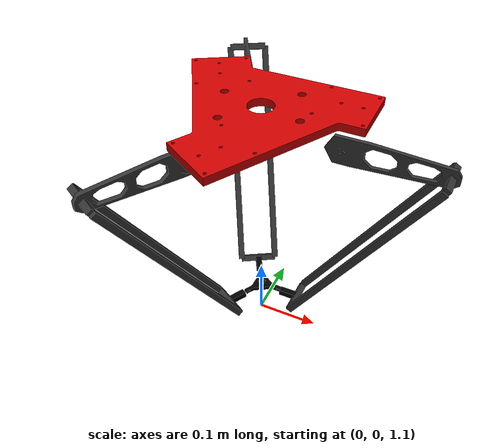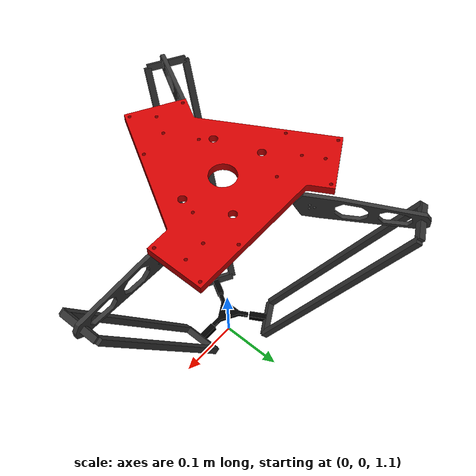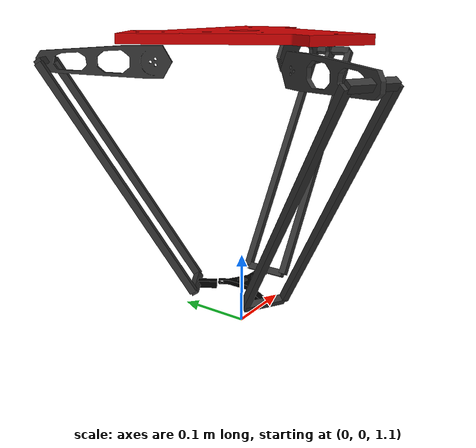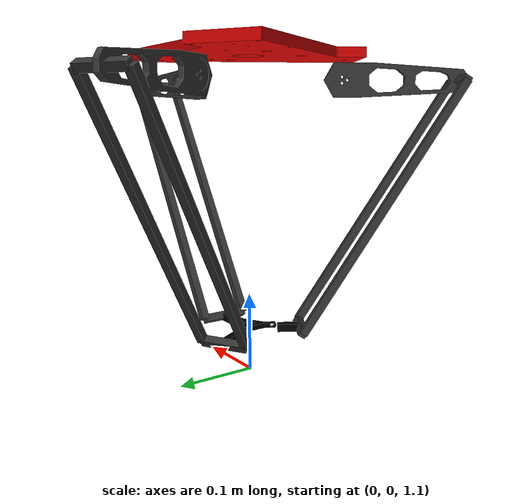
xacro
<?xml version="1.0"?>
<!-- Revolute-Revolute Manipulator -->
<robot name="delta" xmlns:xacro="http://www.ros.org/wiki/xacro">

  <!-- Constants for robot dimensions -->
  <xacro:property name="inch" value="0.0254"/>
  <xacro:property name="PI" value="3.1415926535897931"/>
  <xacro:property name="width" value="0.05" /> <!-- Square dimensions (widthxwidth) of beams -->
  <xacro:property name="base_radius" value="0.111" />
  <xacro:property name="base_length" value="${inch/2}"/>
  <xacro:property name="platform_radius" value="0.0345" />
  <xacro:property name="platform_length" value="${inch/4}"/>
  <xacro:property name="platform_lower_link_dist" value="${platform_radius+0.03}"/>

  <xacro:include filename="macros.xacro" />
  <xacro:include filename="gazebo_stuff.xacro" />

  <!-- Used for fixing robot to Gazebo 'base_link' -->
  <link name="world"/>

  <joint name="fixed" type="fixed">
    <parent link="world"/>
    <child link="base_link"/>
    <origin xyz="0 0 1.5" rpy="0 0 0"/>
  </joint>

  <link name="base_link">
    <collision>
      <origin xyz="0 0 0" rpy="0 0 ${30*PI/180}"/>
      <geometry>
        <cylinder radius="${base_radius}" length="${base_length}"/>
      </geometry>
    </collision>
    <visual>
      <origin xyz="0 0 0" rpy="0 0 ${30*PI/180}"/>
      <geometry>
        <mesh filename="file://$(find my_second_delta)/meshes/Base_Fija.stl" scale="0.001 0.001 0.001"/>
      </geometry>
      <material name="red">

      </material>
    </visual>
    <xacro:inertial_cylinder mass="1.616" length="${base_length}" radius="${base_radius}">
      <origin xyz="0 0 0" rpy="0 0 0"/>
    </xacro:inertial_cylinder>
  </link>

  <xacro:delta_arm prefix="front_"/>

  <joint name="front_delta_arm_joint" type="revolute">
    <parent link="base_link"/>
    <child link="front_upper_link"/>
    <origin xyz="0.12 0 -0.0285" rpy="0 0 0"/>
    <axis xyz="0 1 0"/>
    <dynamics damping="0.7"/>
    <limit lower="${-20*PI/180}" upper="${90*PI/180}" effort="6" velocity="8"/>
  </joint>

  <xacro:delta_arm prefix="right_"/>

  <joint name="right_delta_arm_joint" type="revolute">
    <parent link="base_link"/>
    <child link="right_upper_link"/>
    <origin xyz="-0.06 -0.1039 -0.0285" rpy="0 0 ${-120*PI/180}"/>
    <axis xyz="0 1 0"/>
    <dynamics damping="0.7"/>
    <limit lower="${-20*PI/180}" upper="${90*PI/180}" effort="6" velocity="8"/>
  </joint>

  <xacro:delta_arm prefix="left_"/>

  <joint name="left_delta_arm_joint" type="revolute">
    <parent link="base_link"/>
    <child link="left_upper_link"/>
    <origin xyz="-0.06 0.1039 -0.0285" rpy="0 0 ${120*PI/180}"/>
    <axis xyz="0 1 0"/>
    <dynamics damping="0.7"/>
    <limit lower="${-20*PI/180}" upper="${90*PI/180}" effort="6" velocity="8"/>
  </joint>

  <link name="end_link">
    <collision>
      <origin xyz="0 0 0" rpy="0 0 ${-30*PI/180}"/>
      <geometry>
	      <cylinder length="${platform_length}" radius="${platform_radius}"/>
      </geometry>
    </collision>
    <visual>
      <origin xyz="0 0 0" rpy="0 0 ${-30*PI/180}"/>
      <geometry>
        <mesh filename="file://$(find my_second_delta)/meshes/Base_Movil.stl" scale="0.001 0.001 0.001"/>
      </geometry>
      <material name="black">
      </material>
    </visual>
    <xacro:inertial_cylinder mass="${mass}" length="${platform_length}" radius="${platform_radius}">
      <origin xyz="0 0 0" rpy="0 0 ${-30*PI/180}"/>
    </xacro:inertial_cylinder>
  </link>

  <joint name="front_end_joint" type="fixed">
    <parent link="front_lower_end_link"/>
    <child link="end_link"/>
    <origin xyz="-0.0645 0 0" rpy="0 0 0"/>
  </joint>

  <link name="right_end_virtual_link">
    <inertial>
      <origin xyz="0 0 0" rpy="0 0 0"/>
      <mass value="0.001"/>
      <inertia
        ixx="0.0001" ixy="0.0" ixz="0.0"
        iyy="0.0001" iyz="0.0"
        izz="0.0001"/>
    </inertial>
  </link>

  <joint name="right_end_virtual_joint" type="fixed">
    <parent link="end_link"/>
    <child link="right_end_virtual_link"/>
    <origin xyz="-0.017 -0.02785 0" rpy="0 0 ${-120*PI/180}"/>
  </joint>

  <link name="left_end_virtual_link">
    <inertial>
      <origin xyz="0 0 0" rpy="0 0 0"/>
      <mass value="0.001"/>
      <inertia
        ixx="0.0001" ixy="0.0" ixz="0.0"
        iyy="0.0001" iyz="0.0"
        izz="0.0001"/>
    </inertial>
  </link>

  <joint name="left_end_virtual_joint" type="fixed">
    <parent link="end_link"/>
    <child link="left_end_virtual_link"/>
    <origin xyz="-0.017 0.02785 0" rpy="0 0 ${120*PI/180}"/>
  </joint>

  <gazebo>
    <joint name="right_end_joint" type="fixed">
      <parent>right_lower_end_link</parent>
      <child>right_end_virtual_link</child>
      <pose> 0 0 0 0 0 0 </pose>
    </joint>
    <joint name="left_end_joint" type="fixed">
      <parent>left_lower_end_link</parent>
      <child>left_end_virtual_link</child>
      <pose> 0 0 0 0 0 0 </pose>
    </joint>
  </gazebo>
</robot>

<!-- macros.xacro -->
<robot xmlns:xacro="http://www.ros.org/wiki/xacro">

  <xacro:macro name="inertial_sphere" params="mass radius *origin">
      <inertial>
          <xacro:insert_block name="origin"/>
          <mass value="${mass}"/>
          <inertia ixx="${(2/5) * mass * (radius * radius)}" ixy="0.0" ixz="0.0"
                  iyy="${(2/5) * mass * (radius * radius)}" iyz="0.0"
                  izz="${(2/5) * mass * (radius * radius)}"/>
      </inertial>
  </xacro:macro>

  <xacro:macro name="inertial_box" params="mass x y z *origin">
      <inertial>
          <xacro:insert_block name="origin"/>
          <mass value="${mass}"/>
          <inertia ixx="${(1/12) * mass * (y*y + z*z)}" ixy="0.0" ixz="0.0"
                  iyy="${(1/12) * mass * (x*x + z*z)}" iyz="0.0"
                  izz="${(1/12) * mass * (y*y + x*x)}"/>
      </inertial>
  </xacro:macro>

  <xacro:macro name="inertial_cylinder" params="mass length radius *origin">
      <inertial>
          <xacro:insert_block name="origin"/>
          <mass value="${mass}"/>
          <inertia ixx="${(1/12) * mass * (3*radius*radius + length*length)}" ixy="0.0" ixz="0.0"
                  iyy="${(1/12) * mass * (3*radius*radius + length*length)}" iyz="0.0"
                  izz="${(1/2) * mass * (radius*radius)}"/>
      </inertial>
  </xacro:macro>

    <!-- Constants for robot dimensions -->
  <xacro:property name="PI" value="3.1415926535897931"/>
  <xacro:property name="inch" value="0.0254"/>
  <!-- Important angle when robot at origin point, must be calculated!!!!!! -->
  <xacro:property name="elbow_angle" value="${32.5*PI/180}" />
  <xacro:property name="wrist_angle" value="-${elbow_angle}" />
  <xacro:property name="mass" value="0.02" /> <!-- arbitrary value for mass -->
  <xacro:property name="upper_width" value="${inch/4}" /> <!-- Square dimensions (widthxwidth) of beams -->
  <xacro:property name="upper_height" value="0.043"/>
  <xacro:property name="lower_width" value="0.01" />
  <xacro:property name="upper_length" value="0.1475" /> <!-- base and end links -->
  <xacro:property name="lower_height1" value="0.06" /> <!-- Upper link -->
  <xacro:property name="lower_height2" value="0.375" /> <!-- lower link -->
  <xacro:property name="lower_height3" value="0.03" /> <!-- Upper link -->

  <xacro:macro name="delta_arm" params="prefix">
    <link name="${prefix}upper_link">
      <collision>
        <origin xyz="0 0 0" rpy="${180*PI/180} 0 0"/>
        <geometry>
          <box size="${upper_length} ${upper_width} ${upper_height}"/>
        </geometry>
      </collision>
      <visual>
        <origin xyz="0 0 0" rpy="${180*PI/180} 0 0"/>
        <geometry>
          <mesh filename="file://$(find my_second_delta)/meshes/Brazo.stl" scale="0.001 0.001 0.001"/>
        </geometry>
        <material name="grey">

        </material>
      </visual>
      <xacro:inertial_box mass="${mass}" x="${upper_length}" y="${upper_width}" z="${upper_height}">
        <origin xyz="0 0 0" rpy="${180*PI/180} 0 0"/>
      </xacro:inertial_box>
    </link>

    <joint name="${prefix}upper_joint" type="continuous">
      <parent link="${prefix}upper_link"/>
      <child link="${prefix}lower_top_link"/>
      <origin xyz="${upper_length} 0 0" rpy="0 ${elbow_angle} 0"/>
      <axis xyz="0 1 0"/>
    </joint>

    <link name="${prefix}lower_top_link">
      <collision>
        <origin xyz="0 0 0" rpy="0 0 0"/>
        <geometry>
          <box size="${lower_width} ${lower_height1} ${lower_width}"/>
        </geometry>
      </collision>
      <visual>
        <origin xyz="0 0 0" rpy="0 0 0"/>
        <geometry>
          <box size="${lower_width} ${lower_height1} ${lower_width}"/>
        </geometry>
        <material name="grey">
          <color rgba="0.2 0.2 0.2 1.0"/>
        </material>
      </visual>
      <inertial>
        <origin xyz="0 0 0" rpy="0 0 0"/>
        <mass value="${mass}"/>
        <inertia
          ixx="${mass / 12.0 * (lower_width*lower_width + lower_height1*lower_height1)}" ixy="0.0" ixz="0.0"
          iyy="${mass / 12.0 * (lower_width*lower_width + lower_width*lower_width)}" iyz="0.0"
          izz="${mass / 12.0 * (lower_width*lower_width + lower_height1*lower_height1)}"/>
      </inertial>
    </link>

    <joint name="${prefix}lower_top_rignt_joint" type="continuous">
      <parent link="${prefix}lower_top_link"/>
      <child link="${prefix}lower_right_link"/>
      <origin xyz="0 ${-lower_height1/2} 0" rpy="0 0 0"/>
      <axis xyz="1 0 0"/>
    </joint>

    <link name="${prefix}lower_right_link">
      <collision>
        <origin xyz="0 0 ${-lower_height2/2}" rpy="0 0 0"/>
        <geometry>
          <box size="${lower_width} ${lower_width} ${lower_height2}"/>
        </geometry>
      </collision>
      <visual>
        <origin xyz="0 0 ${-lower_height2/2}" rpy="0 0 0"/>
        <geometry>
          <box size="${lower_width} ${lower_width} ${lower_height2}"/>
        </geometry>
        <material name="grey">
          <color rgba="0.2 0.2 0.2 1.0"/>
        </material>
      </visual>
      <inertial>
        <origin xyz="0 0 ${-lower_height2/2}" rpy="0 0 0"/>
        <mass value="${mass}"/>
        <inertia
          ixx="${mass / 12.0 * (lower_width*lower_width + lower_height2*lower_height2)}" ixy="0.0" ixz="0.0"
          iyy="${mass / 12.0 * (lower_height2*lower_height2 + lower_width*lower_width)}" iyz="0.0"
          izz="${mass / 12.0 * (lower_width*lower_width + lower_width*lower_width)}"/>
      </inertial>
    </link>

    <joint name="${prefix}lower_top_left_joint" type="continuous">
      <parent link="${prefix}lower_top_link"/>
      <child link="${prefix}lower_left_link"/>
      <origin xyz="0 ${lower_height1/2} 0" rpy="0 0 0"/>
      <axis xyz="1 0 0"/>
    </joint>

    <link name="${prefix}lower_left_link">
      <collision>
        <origin xyz="0 0 ${-lower_height2/2}" rpy="0 0 0"/>
        <geometry>
          <box size="${lower_width} ${lower_width} ${lower_height2}"/>
        </geometry>
      </collision>
      <visual>
        <origin xyz="0 0 ${-lower_height2/2}" rpy="0 0 0"/>
        <geometry>
          <box size="${lower_width} ${lower_width} ${lower_height2}"/>
        </geometry>
        <material name="grey">
          <color rgba="0.2 0.2 0.2 1.0"/>
        </material>
      </visual>
      <inertial>
        <origin xyz="0 0 ${-lower_height2/2}" rpy="0 0 0"/>
        <mass value="${mass}"/>
        <inertia
          ixx="${mass / 12.0 * (lower_width*lower_width + lower_height2*lower_height2)}" ixy="0.0" ixz="0.0"
          iyy="${mass / 12.0 * (lower_height2*lower_height2 + lower_width*lower_width)}" iyz="0.0"
          izz="${mass / 12.0 * (lower_width*lower_width + lower_width*lower_width)}"/>
      </inertial>
    </link>

    <joint name="${prefix}lower_right_bottom_joint" type="continuous">
      <parent link="${prefix}lower_right_link"/>
      <child link="${prefix}lower_bottom_link"/>
      <origin xyz="0 0 ${-lower_height2}" rpy="0 0 0"/>
      <axis xyz="1 0 0"/>
    </joint>

    <link name="${prefix}lower_bottom_link">
      <collision>
        <origin xyz="0 ${lower_height1/2} 0" rpy="0 0 0"/>
        <geometry>
          <box size="${lower_width} ${lower_height1} ${lower_width}"/>
        </geometry>
      </collision>
      <visual>
        <origin xyz="0 ${lower_height1/2} 0" rpy="0 0 0"/>
        <geometry>
          <box size="${lower_width} ${lower_height1} ${lower_width}"/>
        </geometry>
        <material name="grey">
          <color rgba="0.2 0.2 0.2 1.0"/>
        </material>
      </visual>
      <inertial>
        <origin xyz="0 ${lower_height1/2} 0" rpy="0 0 0"/>
        <mass value="${mass}"/>
        <inertia
          ixx="${mass / 12.0 * (lower_width*lower_width + lower_height1*lower_height1)}" ixy="0.0" ixz="0.0"
          iyy="${mass / 12.0 * (lower_height1*lower_height1 + lower_width*lower_width)}" iyz="0.0"
          izz="${mass / 12.0 * (lower_width*lower_width + lower_width*lower_width)}"/>
      </inertial>
    </link>

    <joint name="${prefix}lower_bottom_end_joint" type="continuous">
      <parent link="${prefix}lower_bottom_link"/>
      <child link="${prefix}lower_end_link"/>
      <origin xyz="0 ${lower_height1/2} 0" rpy="0 ${wrist_angle} 0"/>
      <axis xyz="0 1 0"/>
    </joint>

    <link name="${prefix}lower_end_link">
      <collision>
        <origin xyz="${-lower_height3/2} 0 0" rpy="0 0 0"/>
        <geometry>
          <box size="${lower_height3} ${lower_width} ${lower_width}"/>
        </geometry>
      </collision>
      <visual>
        <origin xyz="${-lower_height3/2} 0 0" rpy="0 0 0"/>
        <geometry>
          <box size="${lower_height3} ${lower_width} ${lower_width}"/>
        </geometry>
        <material name="black">
          <color rgba="0.0 0.0 0.0 1.0"/>
        </material>
      </visual>
      <inertial>
        <origin xyz="${-lower_height3/2} 0 0" rpy="0 0 0"/>
        <mass value="${mass}"/>
        <inertia
          ixx="${mass / 12.0 * (lower_width*lower_width + lower_width*lower_width)}" ixy="0.0" ixz="0.0"
          iyy="${mass / 12.0 * (lower_height3*lower_height3 + lower_width*lower_width)}" iyz="0.0"
          izz="${mass / 12.0 * (lower_height3*lower_height3 + lower_width*lower_width)}"/>
      </inertial>
    </link>

    <joint name="${prefix}lower_bottom_virtual_joint" type="continuous">
      <parent link="${prefix}lower_bottom_link"/>
      <child link="${prefix}lower_bottom_virtual_link"/>
      <origin xyz="0 ${lower_height1} 0" rpy="0 0 0"/>
      <axis xyz="1 0 0"/>
    </joint>

    <link name="${prefix}lower_bottom_virtual_link">
      <inertial>
        <origin xyz="0 0 0" rpy="0 0 0"/>
        <mass value="0.01"/>
        <inertia
          ixx="0.001" ixy="0.0" ixz="0.0"
          iyy="0.001" iyz="0.0"
          izz="0.001"/>
      </inertial>
    </link>

    <joint name="${prefix}lower_left_virtual_joint" type="fixed">
      <parent link="${prefix}lower_left_link"/>
      <child link="${prefix}lower_left_virtual_link"/>
      <origin xyz="0 0 ${-lower_height2}" rpy="0 0 0"/>
    </joint>

    <link name="${prefix}lower_left_virtual_link">
      <inertial>
        <origin xyz="0 0 0" rpy="0 0 0"/>
        <mass value="0.01"/>
        <inertia
          ixx="0.001" ixy="0.0" ixz="0.0"
          iyy="0.001" iyz="0.0"
          izz="0.001"/>
      </inertial>
    </link>

    <gazebo>
      <joint name="${prefix}lower_left_bottom_joint" type="fixed">
        <parent>${prefix}lower_left_virtual_link</parent>
        <child>${prefix}lower_bottom_virtual_link</child>
        <pose> 0 0 0 0 0 0 </pose>
      </joint>
    </gazebo>

  </xacro:macro>
</robot>

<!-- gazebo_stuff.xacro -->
<robot xmlns:xacro="http://www.ros.org/wiki/xacro">
    <physics type='ode'>
    <max_step_size>0.001</max_step_size>
    <real_time_factor>0.1</real_time_factor>
    <real_time_update_rate>1000</real_time_update_rate>
    <gravity>0 0 -9.8</gravity>
  </physics>

  <gazebo>
    <plugin name="gazebo_ros_control" filename="libgazebo_ros_control.so">
      <robotNamespace></robotNamespace>
      <robotSimType>gazebo_ros_control/DefaultRobotHWSim</robotSimType>
      <legacyModeNS>true</legacyModeNS>
    </plugin>
  </gazebo>

  <gazebo reference="base_link">
    <material>Gazebo/Orange</material>
    <selfCollide>false</selfCollide>
  </gazebo>

  <gazebo reference="end_link">
    <material>Gazebo/Black</material>
    <selfCollide>false</selfCollide>
  </gazebo>

  <transmission name="front_delta_arm_joint_trans">
    <type>transmission_interface/SimpleTransmission</type>
    <joint name="front_delta_arm_joint">
      <hardwareInterface>hardware_interface/EffortJointInterface</hardwareInterface>
    </joint>
    <actuator name="front_delta_arm_joint_motor">
      <hardwareInterface>hardware_interface/EffortJointInterface</hardwareInterface>
      <mechanicalReduction>1</mechanicalReduction>
    </actuator>
  </transmission>
  <transmission name="right_delta_arm_joint_trans">
    <type>transmission_interface/SimpleTransmission</type>
    <joint name="right_delta_arm_joint">
      <hardwareInterface>hardware_interface/EffortJointInterface</hardwareInterface>
    </joint>
    <actuator name="right_delta_arm_joint_motor">
      <hardwareInterface>hardware_interface/EffortJointInterface</hardwareInterface>
      <mechanicalReduction>1</mechanicalReduction>
    </actuator>
  </transmission>
  <transmission name="left_delta_arm_joint_trans">
    <type>transmission_interface/SimpleTransmission</type>
    <joint name="left_delta_arm_joint">
      <hardwareInterface>hardware_interface/EffortJointInterface</hardwareInterface>
    </joint>
    <actuator name="left_delta_arm_joint_motor">
      <hardwareInterface>hardware_interface/EffortJointInterface</hardwareInterface>
      <mechanicalReduction>1</mechanicalReduction>
    </actuator>
  </transmission>

  <xacro:macro name="delta_arm_gazebo" params="prefix">
    <gazebo reference="${prefix}upper_link">
      <material>Gazebo/Grey</material>
      <selfCollide>false</selfCollide>
    </gazebo>
    <gazebo reference="${prefix}lower_top_link">
      <material>Gazebo/Grey</material>
      <selfCollide>false</selfCollide>
    </gazebo>
    <gazebo reference="${prefix}lower_right_link">
      <material>Gazebo/Grey</material>
      <selfCollide>false</selfCollide>
    </gazebo>
    <gazebo reference="${prefix}lower_left_link">
      <material>Gazebo/Grey</material>
      <selfCollide>false</selfCollide>
    </gazebo>
    <gazebo reference="${prefix}lower_bottom_link">
      <material>Gazebo/Grey</material>
      <selfCollide>false</selfCollide>
    </gazebo>
    <gazebo reference="${prefix}lower_end_link">
      <material>Gazebo/Red</material>
      <selfCollide>false</selfCollide>
    </gazebo>

    <transmission name="${prefix}upper_joint_trans">
      <type>transmission_interface/SimpleTransmission</type>
      <joint name="${prefix}upper_joint">
        <hardwareInterface>hardware_interface/EffortJointInterface</hardwareInterface>
      </joint>
      <actuator name="${prefix}upper_joint_motor">
        <hardwareInterface>hardware_interface/EffortJointInterface</hardwareInterface>
        <mechanicalReduction>1</mechanicalReduction>
      </actuator>
    </transmission>
    <transmission name="${prefix}lower_top_rignt_joint_trans">
      <type>transmission_interface/SimpleTransmission</type>
      <joint name="${prefix}lower_top_rignt_joint">
        <hardwareInterface>hardware_interface/EffortJointInterface</hardwareInterface>
      </joint>
      <actuator name="${prefix}lower_top_rignt_joint_motor">
        <hardwareInterface>hardware_interface/EffortJointInterface</hardwareInterface>
        <mechanicalReduction>1</mechanicalReduction>
      </actuator>
    </transmission>
    <transmission name="${prefix}lower_top_left_joint_trans">
      <type>transmission_interface/SimpleTransmission</type>
      <joint name="${prefix}lower_top_left_joint">
        <hardwareInterface>hardware_interface/EffortJointInterface</hardwareInterface>
      </joint>
      <actuator name="${prefix}lower_top_left_joint_motor">
        <hardwareInterface>hardware_interface/EffortJointInterface</hardwareInterface>
        <mechanicalReduction>1</mechanicalReduction>
      </actuator>
    </transmission>
    <transmission name="${prefix}lower_right_bottom_joint_trans">
      <type>transmission_interface/SimpleTransmission</type>
      <joint name="${prefix}lower_right_bottom_joint">
        <hardwareInterface>hardware_interface/EffortJointInterface</hardwareInterface>
      </joint>
      <actuator name="${prefix}lower_right_bottom_joint_motor">
        <hardwareInterface>hardware_interface/EffortJointInterface</hardwareInterface>
        <mechanicalReduction>1</mechanicalReduction>
      </actuator>
    </transmission>
    <transmission name="${prefix}lower_bottom_end_joint_trans">
      <type>transmission_interface/SimpleTransmission</type>
      <joint name="${prefix}lower_bottom_end_joint">
        <hardwareInterface>hardware_interface/EffortJointInterface</hardwareInterface>
      </joint>
      <actuator name="${prefix}lower_bottom_end_joint_motor">
        <hardwareInterface>hardware_interface/EffortJointInterface</hardwareInterface>
        <mechanicalReduction>1</mechanicalReduction>
      </actuator>
    </transmission>
    <transmission name="${prefix}lower_bottom_virtual_joint_trans">
      <type>transmission_interface/SimpleTransmission</type>
      <joint name="${prefix}lower_bottom_virtual_joint">
        <hardwareInterface>hardware_interface/EffortJointInterface</hardwareInterface>
      </joint>
      <actuator name="${prefix}lower_bottom_virtual_joint_motor">
        <hardwareInterface>hardware_interface/EffortJointInterface</hardwareInterface>
        <mechanicalReduction>1</mechanicalReduction>
      </actuator>
    </transmission>
  </xacro:macro>

  <material name="black">
    <color rgba="0.0 0.0 0.0 1.0"/>
    <script>
      <uri>file://media/materials/scripts/gazebo.material</uri>
      <name>Gazebo/Black</name>
    </script>
    <shader type='pixel'>
      <normal_map>__default__</normal_map>
    </shader>
    <ambient>0.3 0.3 0.3 1</ambient>
    <diffuse>0.7 0.7 0.7 1</diffuse>
    <specular>0.01 0.01 0.01 1</specular>
    <emissive>0 0 0 1</emissive>
  </material>

  <material name="blue">
    <color rgba="0.0 0.0 0.8 1.0"/>
  </material>

  <material name="green">
    <color rgba="0.0 0.8 0.0 1.0"/>
  </material>

  <material name="grey">
    <color rgba="0.2 0.2 0.2 1.0"/>
    <script>
      <uri>file://media/materials/scripts/gazebo.material</uri>
      <name>Gazebo/Red</name>
    </script>
    <shader type='pixel'>
      <normal_map>__default__</normal_map>
    </shader>
    <ambient>0.3 0.3 0.3 1</ambient>
    <diffuse>0.7 0.7 0.7 1</diffuse>
    <specular>0.01 0.01 0.01 1</specular>
    <emissive>0 0 0 1</emissive>
  </material>

  <material name="orange">
    <color rgba="${255/255} ${108/255} ${10/255} 1.0"/>
  </material>

  <material name="brown">
    <color rgba="${222/255} ${207/255} ${195/255} 1.0"/>
  </material>

  <material name="red">
    <color rgba="0.8 0.0 0.0 1.0"/>
    <script>
      <uri>file://media/materials/scripts/gazebo.material</uri>
      <name>Gazebo/Red</name>
    </script>
    <shader type='pixel'>
      <normal_map>__default__</normal_map>
    </shader>
    <ambient>0.3 0.3 0.3 1</ambient>
    <diffuse>0.7 0.7 0.7 1</diffuse>
    <specular>0.01 0.01 0.01 1</specular>
    <emissive>0 0 0 1</emissive>
  </material>

  <material name="white">
    <color rgba="1.0 1.0 1.0 1.0"/>
  </material>
</robot>
